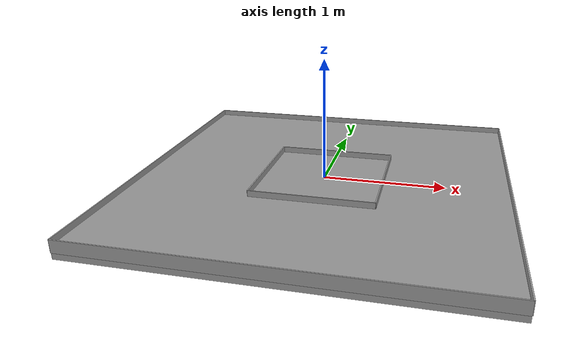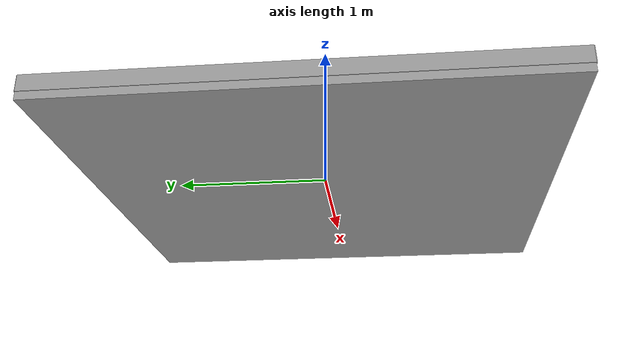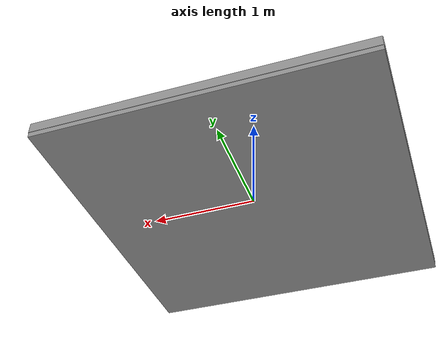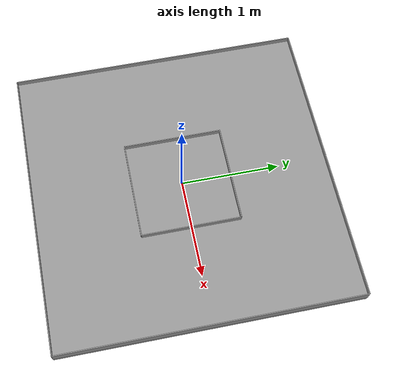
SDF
<?xml version='1.0'?>
<sdf version='1.7'>
  <model name='WRO_FIELD_2025'>
    <link name='link_0'>
      <inertial>
        <mass>1</mass>
        <inertia>
          <ixx>0.166667</ixx>
          <ixy>0</ixy>
          <ixz>0</ixz>
          <iyy>0.166667</iyy>
          <iyz>0</iyz>
          <izz>0.166667</izz>
        </inertia>
        <pose>0 0 0 0 0 0</pose>
      </inertial>
      <pose>0 0 -0.044444 0 -0 0</pose>
      <gravity>1</gravity>
      <self_collide>0</self_collide>
      <kinematic>0</kinematic>
      <enable_wind>0</enable_wind>
      <visual name='visual'>
        <pose>0 0 0 0 -0 0</pose>
        <geometry>
          <box>
            <size>3 3 0.1</size>
          </box>
        </geometry>
        <material>
          <lighting>1</lighting>
          <script>
            <uri>file://media/materials/scripts/gazebo.material</uri>
            <name>Gazebo/Grey</name>
          </script>
          <shader type='pixel'>
            <normal_map>__default__</normal_map>
          </shader>
          <ambient>0.3 0.3 0.3 1</ambient>
          <diffuse>0.7 0.7 0.7 1</diffuse>
          <specular>0.01 0.01 0.01 1</specular>
          <emissive>0 0 0 1</emissive>
        </material>
        <transparency>0</transparency>
        <cast_shadows>1</cast_shadows>
      </visual>
      <collision name='collision_2'>
        <laser_retro>0</laser_retro>
        <max_contacts>10</max_contacts>
        <pose>0 0 0 0 -0 0</pose>
        <geometry>
          <box>
            <size>3 3 0.1</size>
          </box>
        </geometry>
        <surface>
          <friction>
            <ode>
              <mu>1</mu>
              <mu2>1</mu2>
              <fdir1>0 0 0</fdir1>
              <slip1>0</slip1>
              <slip2>0</slip2>
            </ode>
            <torsional>
              <coefficient>1</coefficient>
              <patch_radius>0</patch_radius>
              <surface_radius>0</surface_radius>
              <use_patch_radius>1</use_patch_radius>
              <ode>
                <slip>0</slip>
              </ode>
            </torsional>
          </friction>
          <bounce>
            <restitution_coefficient>0</restitution_coefficient>
            <threshold>1e+06</threshold>
          </bounce>
          <contact>
            <collide_without_contact>0</collide_without_contact>
            <collide_without_contact_bitmask>1</collide_without_contact_bitmask>
            <collide_bitmask>1</collide_bitmask>
            <ode>
              <soft_cfm>0</soft_cfm>
              <soft_erp>0.2</soft_erp>
              <kp>1e+13</kp>
              <kd>1</kd>
              <max_vel>0.01</max_vel>
              <min_depth>0</min_depth>
            </ode>
            <bullet>
              <split_impulse>1</split_impulse>
              <split_impulse_penetration_threshold>-0.01</split_impulse_penetration_threshold>
              <soft_cfm>0</soft_cfm>
              <soft_erp>0.2</soft_erp>
              <kp>1e+13</kp>
              <kd>1</kd>
            </bullet>
          </contact>
        </surface>
      </collision>
    </link>
    <link name='link_1'>
      <inertial>
        <mass>1</mass>
        <inertia>
          <ixx>0.166667</ixx>
          <ixy>0</ixy>
          <ixz>0</ixz>
          <iyy>0.166667</iyy>
          <iyz>0</iyz>
          <izz>0.166667</izz>
        </inertia>
        <pose>0 0 0 0 -0 0</pose>
      </inertial>
      <pose>0 1.5 0.005556 0 -0 0</pose>
      <gravity>1</gravity>
      <self_collide>0</self_collide>
      <kinematic>0</kinematic>
      <enable_wind>0</enable_wind>
      <visual name='visual'>
        <pose>0 0 0 0 -0 0</pose>
        <geometry>
          <box>
            <size>3 0.01 0.1</size>
          </box>
        </geometry>
        <material>
          <lighting>1</lighting>
          <script>
            <uri>file://media/materials/scripts/gazebo.material</uri>
            <name>Gazebo/Grey</name>
          </script>
          <shader type='pixel'>
            <normal_map>__default__</normal_map>
          </shader>
          <ambient>0.3 0.3 0.3 1</ambient>
          <diffuse>0.7 0.7 0.7 1</diffuse>
          <specular>0.01 0.01 0.01 1</specular>
          <emissive>0 0 0 1</emissive>
        </material>
        <transparency>0</transparency>
        <cast_shadows>1</cast_shadows>
      </visual>
      <collision name='collision_1'>
        <laser_retro>0</laser_retro>
        <max_contacts>10</max_contacts>
        <pose>0 0 0 0 -0 0</pose>
        <geometry>
          <box>
            <size>3 0.01 0.1</size>
          </box>
        </geometry>
        <surface>
          <friction>
            <ode>
              <mu>1</mu>
              <mu2>1</mu2>
              <fdir1>0 0 0</fdir1>
              <slip1>0</slip1>
              <slip2>0</slip2>
            </ode>
            <torsional>
              <coefficient>1</coefficient>
              <patch_radius>0</patch_radius>
              <surface_radius>0</surface_radius>
              <use_patch_radius>1</use_patch_radius>
              <ode>
                <slip>0</slip>
              </ode>
            </torsional>
          </friction>
          <bounce>
            <restitution_coefficient>0</restitution_coefficient>
            <threshold>1e+06</threshold>
          </bounce>
          <contact>
            <collide_without_contact>0</collide_without_contact>
            <collide_without_contact_bitmask>1</collide_without_contact_bitmask>
            <collide_bitmask>1</collide_bitmask>
            <ode>
              <soft_cfm>0</soft_cfm>
              <soft_erp>0.2</soft_erp>
              <kp>1e+13</kp>
              <kd>1</kd>
              <max_vel>0.01</max_vel>
              <min_depth>0</min_depth>
            </ode>
            <bullet>
              <split_impulse>1</split_impulse>
              <split_impulse_penetration_threshold>-0.01</split_impulse_penetration_threshold>
              <soft_cfm>0</soft_cfm>
              <soft_erp>0.2</soft_erp>
              <kp>1e+13</kp>
              <kd>1</kd>
            </bullet>
          </contact>
        </surface>
      </collision>
    </link>
    <link name='link_1_clone'>
      <inertial>
        <mass>1</mass>
        <inertia>
          <ixx>0.166667</ixx>
          <ixy>0</ixy>
          <ixz>0</ixz>
          <iyy>0.166667</iyy>
          <iyz>0</iyz>
          <izz>0.166667</izz>
        </inertia>
        <pose>0 0 0 0 -0 0</pose>
      </inertial>
      <pose>-1.5 0 0.005556 0 -0 1.5708</pose>
      <gravity>1</gravity>
      <self_collide>0</self_collide>
      <kinematic>0</kinematic>
      <enable_wind>0</enable_wind>
      <visual name='visual'>
        <pose>0 0 0 0 -0 0</pose>
        <geometry>
          <box>
            <size>3 0.01 0.1</size>
          </box>
        </geometry>
        <material>
          <lighting>1</lighting>
          <script>
            <uri>file://media/materials/scripts/gazebo.material</uri>
            <name>Gazebo/Grey</name>
          </script>
          <shader type='pixel'>
            <normal_map>__default__</normal_map>
          </shader>
          <ambient>0.3 0.3 0.3 1</ambient>
          <diffuse>0.7 0.7 0.7 1</diffuse>
          <specular>0.01 0.01 0.01 1</specular>
          <emissive>0 0 0 1</emissive>
        </material>
        <transparency>0</transparency>
        <cast_shadows>1</cast_shadows>
      </visual>
      <collision name='collision_1'>
        <laser_retro>0</laser_retro>
        <max_contacts>10</max_contacts>
        <pose>0 0 0 0 -0 0</pose>
        <geometry>
          <box>
            <size>3 0.01 0.1</size>
          </box>
        </geometry>
        <surface>
          <friction>
            <ode>
              <mu>1</mu>
              <mu2>1</mu2>
              <fdir1>0 0 0</fdir1>
              <slip1>0</slip1>
              <slip2>0</slip2>
            </ode>
            <torsional>
              <coefficient>1</coefficient>
              <patch_radius>0</patch_radius>
              <surface_radius>0</surface_radius>
              <use_patch_radius>1</use_patch_radius>
              <ode>
                <slip>0</slip>
              </ode>
            </torsional>
          </friction>
          <bounce>
            <restitution_coefficient>0</restitution_coefficient>
            <threshold>1e+06</threshold>
          </bounce>
          <contact>
            <collide_without_contact>0</collide_without_contact>
            <collide_without_contact_bitmask>1</collide_without_contact_bitmask>
            <collide_bitmask>1</collide_bitmask>
            <ode>
              <soft_cfm>0</soft_cfm>
              <soft_erp>0.2</soft_erp>
              <kp>1e+13</kp>
              <kd>1</kd>
              <max_vel>0.01</max_vel>
              <min_depth>0</min_depth>
            </ode>
            <bullet>
              <split_impulse>1</split_impulse>
              <split_impulse_penetration_threshold>-0.01</split_impulse_penetration_threshold>
              <soft_cfm>0</soft_cfm>
              <soft_erp>0.2</soft_erp>
              <kp>1e+13</kp>
              <kd>1</kd>
            </bullet>
          </contact>
        </surface>
      </collision>
    </link>
    <link name='link_1_clone_0'>
      <inertial>
        <mass>1</mass>
        <inertia>
          <ixx>0.166667</ixx>
          <ixy>0</ixy>
          <ixz>0</ixz>
          <iyy>0.166667</iyy>
          <iyz>0</iyz>
          <izz>0.166667</izz>
        </inertia>
        <pose>0 0 0 0 -0 0</pose>
      </inertial>
      <pose>1.5 0 0.005556 0 -0 1.5708</pose>
      <gravity>1</gravity>
      <self_collide>0</self_collide>
      <kinematic>0</kinematic>
      <enable_wind>0</enable_wind>
      <visual name='visual'>
        <pose>0 0 0 0 -0 0</pose>
        <geometry>
          <box>
            <size>3 0.01 0.1</size>
          </box>
        </geometry>
        <material>
          <lighting>1</lighting>
          <script>
            <uri>file://media/materials/scripts/gazebo.material</uri>
            <name>Gazebo/Grey</name>
          </script>
          <shader type='pixel'>
            <normal_map>__default__</normal_map>
          </shader>
          <ambient>0.3 0.3 0.3 1</ambient>
          <diffuse>0.7 0.7 0.7 1</diffuse>
          <specular>0.01 0.01 0.01 1</specular>
          <emissive>0 0 0 1</emissive>
        </material>
        <transparency>0</transparency>
        <cast_shadows>1</cast_shadows>
      </visual>
      <collision name='collision_1'>
        <laser_retro>0</laser_retro>
        <max_contacts>10</max_contacts>
        <pose>0 0 0 0 -0 0</pose>
        <geometry>
          <box>
            <size>3 0.01 0.1</size>
          </box>
        </geometry>
        <surface>
          <friction>
            <ode>
              <mu>1</mu>
              <mu2>1</mu2>
              <fdir1>0 0 0</fdir1>
              <slip1>0</slip1>
              <slip2>0</slip2>
            </ode>
            <torsional>
              <coefficient>1</coefficient>
              <patch_radius>0</patch_radius>
              <surface_radius>0</surface_radius>
              <use_patch_radius>1</use_patch_radius>
              <ode>
                <slip>0</slip>
              </ode>
            </torsional>
          </friction>
          <bounce>
            <restitution_coefficient>0</restitution_coefficient>
            <threshold>1e+06</threshold>
          </bounce>
          <contact>
            <collide_without_contact>0</collide_without_contact>
            <collide_without_contact_bitmask>1</collide_without_contact_bitmask>
            <collide_bitmask>1</collide_bitmask>
            <ode>
              <soft_cfm>0</soft_cfm>
              <soft_erp>0.2</soft_erp>
              <kp>1e+13</kp>
              <kd>1</kd>
              <max_vel>0.01</max_vel>
              <min_depth>0</min_depth>
            </ode>
            <bullet>
              <split_impulse>1</split_impulse>
              <split_impulse_penetration_threshold>-0.01</split_impulse_penetration_threshold>
              <soft_cfm>0</soft_cfm>
              <soft_erp>0.2</soft_erp>
              <kp>1e+13</kp>
              <kd>1</kd>
            </bullet>
          </contact>
        </surface>
      </collision>
    </link>
    <link name='link_1_clone_0_clone'>
      <inertial>
        <mass>1</mass>
        <inertia>
          <ixx>0.166667</ixx>
          <ixy>0</ixy>
          <ixz>0</ixz>
          <iyy>0.166667</iyy>
          <iyz>0</iyz>
          <izz>0.166667</izz>
        </inertia>
        <pose>0 0 0 0 -0 0</pose>
      </inertial>
      <pose>0.5 0 0.005556 0 -0 1.5708</pose>
      <gravity>1</gravity>
      <self_collide>0</self_collide>
      <kinematic>0</kinematic>
      <enable_wind>0</enable_wind>
      <visual name='visual'>
        <pose>0 0 0 0 -0 0</pose>
        <geometry>
          <box>
            <size>1 0.01 0.1</size>
          </box>
        </geometry>
        <material>
          <lighting>1</lighting>
          <script>
            <uri>file://media/materials/scripts/gazebo.material</uri>
            <name>Gazebo/Grey</name>
          </script>
          <shader type='pixel'>
            <normal_map>__default__</normal_map>
          </shader>
          <ambient>0.3 0.3 0.3 1</ambient>
          <diffuse>0.7 0.7 0.7 1</diffuse>
          <specular>0.01 0.01 0.01 1</specular>
          <emissive>0 0 0 1</emissive>
        </material>
        <transparency>0</transparency>
        <cast_shadows>1</cast_shadows>
      </visual>
      <collision name='collision_2'>
        <laser_retro>0</laser_retro>
        <max_contacts>10</max_contacts>
        <pose>0 0 0 0 -0 0</pose>
        <geometry>
          <box>
            <size>1 0.01 0.1</size>
          </box>
        </geometry>
        <surface>
          <friction>
            <ode>
              <mu>1</mu>
              <mu2>1</mu2>
              <fdir1>0 0 0</fdir1>
              <slip1>0</slip1>
              <slip2>0</slip2>
            </ode>
            <torsional>
              <coefficient>1</coefficient>
              <patch_radius>0</patch_radius>
              <surface_radius>0</surface_radius>
              <use_patch_radius>1</use_patch_radius>
              <ode>
                <slip>0</slip>
              </ode>
            </torsional>
          </friction>
          <bounce>
            <restitution_coefficient>0</restitution_coefficient>
            <threshold>1e+06</threshold>
          </bounce>
          <contact>
            <collide_without_contact>0</collide_without_contact>
            <collide_without_contact_bitmask>1</collide_without_contact_bitmask>
            <collide_bitmask>1</collide_bitmask>
            <ode>
              <soft_cfm>0</soft_cfm>
              <soft_erp>0.2</soft_erp>
              <kp>1e+13</kp>
              <kd>1</kd>
              <max_vel>0.01</max_vel>
              <min_depth>0</min_depth>
            </ode>
            <bullet>
              <split_impulse>1</split_impulse>
              <split_impulse_penetration_threshold>-0.01</split_impulse_penetration_threshold>
              <soft_cfm>0</soft_cfm>
              <soft_erp>0.2</soft_erp>
              <kp>1e+13</kp>
              <kd>1</kd>
            </bullet>
          </contact>
        </surface>
      </collision>
    </link>
    <link name='link_1_clone_1'>
      <inertial>
        <mass>1</mass>
        <inertia>
          <ixx>0.166667</ixx>
          <ixy>0</ixy>
          <ixz>0</ixz>
          <iyy>0.166667</iyy>
          <iyz>0</iyz>
          <izz>0.166667</izz>
        </inertia>
        <pose>0 0 0 0 -0 0</pose>
      </inertial>
      <pose>0 -1.5 0.005556 0 0 -3.14139</pose>
      <gravity>1</gravity>
      <self_collide>0</self_collide>
      <kinematic>0</kinematic>
      <enable_wind>0</enable_wind>
      <visual name='visual'>
        <pose>0 0 0 0 -0 0</pose>
        <geometry>
          <box>
            <size>3 0.01 0.1</size>
          </box>
        </geometry>
        <material>
          <lighting>1</lighting>
          <script>
            <uri>file://media/materials/scripts/gazebo.material</uri>
            <name>Gazebo/Grey</name>
          </script>
          <shader type='pixel'>
            <normal_map>__default__</normal_map>
          </shader>
          <ambient>0.3 0.3 0.3 1</ambient>
          <diffuse>0.7 0.7 0.7 1</diffuse>
          <specular>0.01 0.01 0.01 1</specular>
          <emissive>0 0 0 1</emissive>
        </material>
        <transparency>0</transparency>
        <cast_shadows>1</cast_shadows>
      </visual>
      <collision name='collision_1'>
        <laser_retro>0</laser_retro>
        <max_contacts>10</max_contacts>
        <pose>0 0 0 0 -0 0</pose>
        <geometry>
          <box>
            <size>3 0.01 0.1</size>
          </box>
        </geometry>
        <surface>
          <friction>
            <ode>
              <mu>1</mu>
              <mu2>1</mu2>
              <fdir1>0 0 0</fdir1>
              <slip1>0</slip1>
              <slip2>0</slip2>
            </ode>
            <torsional>
              <coefficient>1</coefficient>
              <patch_radius>0</patch_radius>
              <surface_radius>0</surface_radius>
              <use_patch_radius>1</use_patch_radius>
              <ode>
                <slip>0</slip>
              </ode>
            </torsional>
          </friction>
          <bounce>
            <restitution_coefficient>0</restitution_coefficient>
            <threshold>1e+06</threshold>
          </bounce>
          <contact>
            <collide_without_contact>0</collide_without_contact>
            <collide_without_contact_bitmask>1</collide_without_contact_bitmask>
            <collide_bitmask>1</collide_bitmask>
            <ode>
              <soft_cfm>0</soft_cfm>
              <soft_erp>0.2</soft_erp>
              <kp>1e+13</kp>
              <kd>1</kd>
              <max_vel>0.01</max_vel>
              <min_depth>0</min_depth>
            </ode>
            <bullet>
              <split_impulse>1</split_impulse>
              <split_impulse_penetration_threshold>-0.01</split_impulse_penetration_threshold>
              <soft_cfm>0</soft_cfm>
              <soft_erp>0.2</soft_erp>
              <kp>1e+13</kp>
              <kd>1</kd>
            </bullet>
          </contact>
        </surface>
      </collision>
    </link>
    <link name='link_1_clone_1_clone'>
      <inertial>
        <mass>1</mass>
        <inertia>
          <ixx>0.166667</ixx>
          <ixy>0</ixy>
          <ixz>0</ixz>
          <iyy>0.166667</iyy>
          <iyz>0</iyz>
          <izz>0.166667</izz>
        </inertia>
        <pose>0 0 0 0 -0 0</pose>
      </inertial>
      <pose>0 -0.5 0.005556 0 0 -3.14139</pose>
      <gravity>1</gravity>
      <self_collide>0</self_collide>
      <kinematic>0</kinematic>
      <enable_wind>0</enable_wind>
      <visual name='visual'>
        <pose>0 0 0 0 -0 0</pose>
        <geometry>
          <box>
            <size>1 0.01 0.1</size>
          </box>
        </geometry>
        <material>
          <lighting>1</lighting>
          <script>
            <uri>file://media/materials/scripts/gazebo.material</uri>
            <name>Gazebo/Grey</name>
          </script>
          <shader type='pixel'>
            <normal_map>__default__</normal_map>
          </shader>
          <ambient>0.3 0.3 0.3 1</ambient>
          <diffuse>0.7 0.7 0.7 1</diffuse>
          <specular>0.01 0.01 0.01 1</specular>
          <emissive>0 0 0 1</emissive>
        </material>
        <transparency>0</transparency>
        <cast_shadows>1</cast_shadows>
      </visual>
      <collision name='collision_2'>
        <laser_retro>0</laser_retro>
        <max_contacts>10</max_contacts>
        <pose>0 0 0 0 -0 0</pose>
        <geometry>
          <box>
            <size>1 0.01 0.1</size>
          </box>
        </geometry>
        <surface>
          <friction>
            <ode>
              <mu>1</mu>
              <mu2>1</mu2>
              <fdir1>0 0 0</fdir1>
              <slip1>0</slip1>
              <slip2>0</slip2>
            </ode>
            <torsional>
              <coefficient>1</coefficient>
              <patch_radius>0</patch_radius>
              <surface_radius>0</surface_radius>
              <use_patch_radius>1</use_patch_radius>
              <ode>
                <slip>0</slip>
              </ode>
            </torsional>
          </friction>
          <bounce>
            <restitution_coefficient>0</restitution_coefficient>
            <threshold>1e+06</threshold>
          </bounce>
          <contact>
            <collide_without_contact>0</collide_without_contact>
            <collide_without_contact_bitmask>1</collide_without_contact_bitmask>
            <collide_bitmask>1</collide_bitmask>
            <ode>
              <soft_cfm>0</soft_cfm>
              <soft_erp>0.2</soft_erp>
              <kp>1e+13</kp>
              <kd>1</kd>
              <max_vel>0.01</max_vel>
              <min_depth>0</min_depth>
            </ode>
            <bullet>
              <split_impulse>1</split_impulse>
              <split_impulse_penetration_threshold>-0.01</split_impulse_penetration_threshold>
              <soft_cfm>0</soft_cfm>
              <soft_erp>0.2</soft_erp>
              <kp>1e+13</kp>
              <kd>1</kd>
            </bullet>
          </contact>
        </surface>
      </collision>
    </link>
    <link name='link_1_clone_2'>
      <inertial>
        <mass>1</mass>
        <inertia>
          <ixx>0.166667</ixx>
          <ixy>0</ixy>
          <ixz>0</ixz>
          <iyy>0.166667</iyy>
          <iyz>0</iyz>
          <izz>0.166667</izz>
        </inertia>
        <pose>0 0 0 0 -0 0</pose>
      </inertial>
      <pose>0 0.5 0.005556 0 -0 0</pose>
      <gravity>1</gravity>
      <self_collide>0</self_collide>
      <kinematic>0</kinematic>
      <enable_wind>0</enable_wind>
      <visual name='visual'>
        <pose>0 0 0 0 -0 0</pose>
        <geometry>
          <box>
            <size>1 0.01 0.1</size>
          </box>
        </geometry>
        <material>
          <lighting>1</lighting>
          <script>
            <uri>file://media/materials/scripts/gazebo.material</uri>
            <name>Gazebo/Grey</name>
          </script>
          <shader type='pixel'>
            <normal_map>__default__</normal_map>
          </shader>
          <ambient>0.3 0.3 0.3 1</ambient>
          <diffuse>0.7 0.7 0.7 1</diffuse>
          <specular>0.01 0.01 0.01 1</specular>
          <emissive>0 0 0 1</emissive>
        </material>
        <transparency>0</transparency>
        <cast_shadows>1</cast_shadows>
      </visual>
      <collision name='collision_2'>
        <laser_retro>0</laser_retro>
        <max_contacts>10</max_contacts>
        <pose>0 0 0 0 -0 0</pose>
        <geometry>
          <box>
            <size>1 0.01 0.1</size>
          </box>
        </geometry>
        <surface>
          <friction>
            <ode>
              <mu>1</mu>
              <mu2>1</mu2>
              <fdir1>0 0 0</fdir1>
              <slip1>0</slip1>
              <slip2>0</slip2>
            </ode>
            <torsional>
              <coefficient>1</coefficient>
              <patch_radius>0</patch_radius>
              <surface_radius>0</surface_radius>
              <use_patch_radius>1</use_patch_radius>
              <ode>
                <slip>0</slip>
              </ode>
            </torsional>
          </friction>
          <bounce>
            <restitution_coefficient>0</restitution_coefficient>
            <threshold>1e+06</threshold>
          </bounce>
          <contact>
            <collide_without_contact>0</collide_without_contact>
            <collide_without_contact_bitmask>1</collide_without_contact_bitmask>
            <collide_bitmask>1</collide_bitmask>
            <ode>
              <soft_cfm>0</soft_cfm>
              <soft_erp>0.2</soft_erp>
              <kp>1e+13</kp>
              <kd>1</kd>
              <max_vel>0.01</max_vel>
              <min_depth>0</min_depth>
            </ode>
            <bullet>
              <split_impulse>1</split_impulse>
              <split_impulse_penetration_threshold>-0.01</split_impulse_penetration_threshold>
              <soft_cfm>0</soft_cfm>
              <soft_erp>0.2</soft_erp>
              <kp>1e+13</kp>
              <kd>1</kd>
            </bullet>
          </contact>
        </surface>
      </collision>
    </link>
    <link name='link_1_clone_clone'>
      <inertial>
        <mass>1</mass>
        <inertia>
          <ixx>0.166667</ixx>
          <ixy>0</ixy>
          <ixz>0</ixz>
          <iyy>0.166667</iyy>
          <iyz>0</iyz>
          <izz>0.166667</izz>
        </inertia>
        <pose>0 0 0 0 -0 0</pose>
      </inertial>
      <pose>-0.5 0 0.005556 0 -0 1.5708</pose>
      <gravity>1</gravity>
      <self_collide>0</self_collide>
      <kinematic>0</kinematic>
      <enable_wind>0</enable_wind>
      <visual name='visual'>
        <pose>0 0 0 0 -0 0</pose>
        <geometry>
          <box>
            <size>1 0.01 0.1</size>
          </box>
        </geometry>
        <material>
          <lighting>1</lighting>
          <script>
            <uri>file://media/materials/scripts/gazebo.material</uri>
            <name>Gazebo/Grey</name>
          </script>
          <shader type='pixel'>
            <normal_map>__default__</normal_map>
          </shader>
          <ambient>0.3 0.3 0.3 1</ambient>
          <diffuse>0.7 0.7 0.7 1</diffuse>
          <specular>0.01 0.01 0.01 1</specular>
          <emissive>0 0 0 1</emissive>
        </material>
        <transparency>0</transparency>
        <cast_shadows>1</cast_shadows>
      </visual>
      <collision name='collision_2'>
        <laser_retro>0</laser_retro>
        <max_contacts>10</max_contacts>
        <pose>0 0 0 0 -0 0</pose>
        <geometry>
          <box>
            <size>1 0.01 0.1</size>
          </box>
        </geometry>
        <surface>
          <friction>
            <ode>
              <mu>1</mu>
              <mu2>1</mu2>
              <fdir1>0 0 0</fdir1>
              <slip1>0</slip1>
              <slip2>0</slip2>
            </ode>
            <torsional>
              <coefficient>1</coefficient>
              <patch_radius>0</patch_radius>
              <surface_radius>0</surface_radius>
              <use_patch_radius>1</use_patch_radius>
              <ode>
                <slip>0</slip>
              </ode>
            </torsional>
          </friction>
          <bounce>
            <restitution_coefficient>0</restitution_coefficient>
            <threshold>1e+06</threshold>
          </bounce>
          <contact>
            <collide_without_contact>0</collide_without_contact>
            <collide_without_contact_bitmask>1</collide_without_contact_bitmask>
            <collide_bitmask>1</collide_bitmask>
            <ode>
              <soft_cfm>0</soft_cfm>
              <soft_erp>0.2</soft_erp>
              <kp>1e+13</kp>
              <kd>1</kd>
              <max_vel>0.01</max_vel>
              <min_depth>0</min_depth>
            </ode>
            <bullet>
              <split_impulse>1</split_impulse>
              <split_impulse_penetration_threshold>-0.01</split_impulse_penetration_threshold>
              <soft_cfm>0</soft_cfm>
              <soft_erp>0.2</soft_erp>
              <kp>1e+13</kp>
              <kd>1</kd>
            </bullet>
          </contact>
        </surface>
      </collision>
    </link>
    <static>1</static>
    <allow_auto_disable>1</allow_auto_disable>
  </model>
</sdf>
